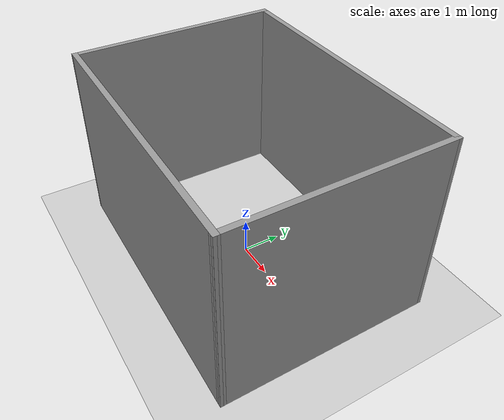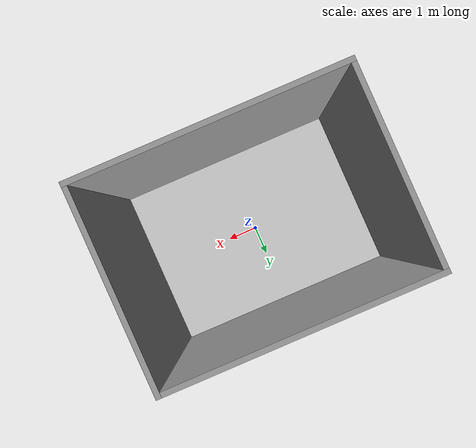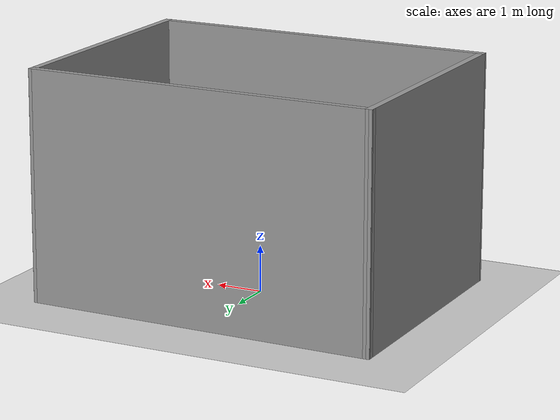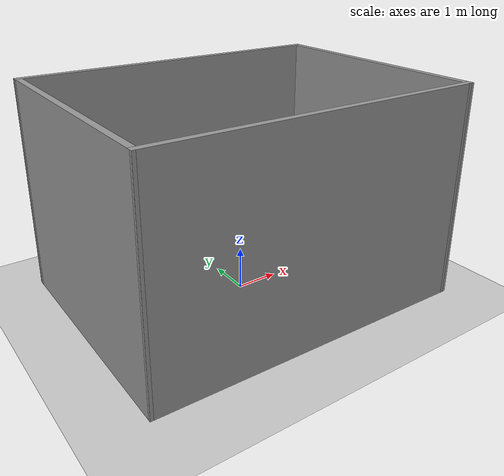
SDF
<?xml version="1.0" ?>
<sdf version="1.4">
 <world name="default">
    <scene>
      <ambient>0.68 0.68 0.68 1.0</ambient>
      <shadows> false</shadows>
      <sky>
        <sunrise/>
        <clouds>
          <speed>12</speed>
      </clouds>
      </sky>
    </scene>

    <physics type='ode'>
      <max_step_size>0.001</max_step_size>
      <real_time_factor>1</real_time_factor>
      <real_time_update_rate>1000</real_time_update_rate>
      <gravity>0 0 -9.8</gravity>
    </physics>

    <include>
      <uri>model://sun</uri>
    </include>

    <include>
      <uri>model://simple_groudplane</uri>
    </include>

    <include>
      <uri>model://simple_room</uri>
      <pose>0 0 0 0 0 0</pose>
    </include>

  </world>
</sdf>

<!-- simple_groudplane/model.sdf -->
<sdf version="1.4">
  <model name="simple_groudplane">
    <static>true</static>
    <link name="link">
      <collision name="collision">
        <geometry>
          <plane>
            <normal>0 0 1</normal>
            <size>30 30</size>
          </plane>
        </geometry>
        <surface>
          <friction>
            <ode>
              <mu>100</mu>
              <mu2>50</mu2>
            </ode>
          </friction>
        </surface>
      </collision>
      <visual name="visual">
        <cast_shadows>false</cast_shadows>
        <geometry>
          <plane>
            <normal>0 0 1</normal>
            <size>30 30</size>
          </plane>
        </geometry>
      </visual>
    </link>
  </model>
</sdf>

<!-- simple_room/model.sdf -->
<sdf version='1.7'>
  <model name='simple_room'>
    <pose>-0.0625 -0.310997 0 0 -0 0</pose>
    <link name='Wall_2'>
      <collision name='Wall_2_Collision'>
        <geometry>
          <box>
            <size>7.73542 0.15 5</size>
          </box>
        </geometry>
        <pose>0 0 2.5 0 -0 0</pose>
      </collision>
      <visual name='Wall_2_Visual'>
        <pose>0 0 2.5 0 -0 0</pose>
        <geometry>
          <box>
            <size>7.73542 0.15 5</size>
          </box>
        </geometry>
        <material>
          <script>
            <uri>file://media/materials/scripts/gazebo.material</uri>
            <name>Gazebo/Grey</name>
          </script>
          <ambient>1 1 1 1</ambient>
        </material>
        <meta>
          <layer>0</layer>
        </meta>
      </visual>
      <pose>0 -2.8 0 0 -0 -0.01292</pose>
    </link>
    <link name='Wall_3'>
      <collision name='Wall_3_Collision'>
        <geometry>
          <box>
            <size>5.75 0.15 5</size>
          </box>
        </geometry>
        <pose>0 0 2.5 0 -0 0</pose>
      </collision>
      <visual name='Wall_3_Visual'>
        <pose>0 0 2.5 0 -0 0</pose>
        <geometry>
          <box>
            <size>5.75 0.15 5</size>
          </box>
        </geometry>
        <material>
          <script>
            <uri>file://media/materials/scripts/gazebo.material</uri>
            <name>Gazebo/Grey</name>
          </script>
          <ambient>1 1 1 1</ambient>
        </material>
        <meta>
          <layer>0</layer>
        </meta>
      </visual>
      <pose>3.7925 -0.049003 0 0 -0 1.5708</pose>
    </link>
    <link name='Wall_4'>
      <collision name='Wall_4_Collision'>
        <geometry>
          <box>
            <size>7.73632 0.15 5</size>
          </box>
        </geometry>
        <pose>0 0 2.5 0 -0 0</pose>
      </collision>
      <visual name='Wall_4_Visual'>
        <pose>0 0 2.5 0 -0 0</pose>
        <geometry>
          <box>
            <size>7.73632 0.15 5</size>
          </box>
        </geometry>
        <material>
          <script>
            <uri>file://media/materials/scripts/gazebo.material</uri>
            <name>Gazebo/Grey</name>
          </script>
          <ambient>1 1 1 1</ambient>
        </material>
        <meta>
          <layer>0</layer>
        </meta>
      </visual>
      <pose>0 2.8 0 0 -0 3.12867</pose>
    </link>
    <link name='Wall_5'>
      <collision name='Wall_5_Collision'>
        <geometry>
          <box>
            <size>5.75 0.15 5</size>
          </box>
        </geometry>
        <pose>0 0 2.5 0 -0 0</pose>
      </collision>
      <visual name='Wall_5_Visual'>
        <pose>0 0 2.5 0 -0 0</pose>
        <geometry>
          <box>
            <size>5.75 0.15 5</size>
          </box>
        </geometry>
        <material>
          <script>
            <uri>file://media/materials/scripts/gazebo.material</uri>
            <name>Gazebo/Grey</name>
          </script>
          <ambient>1 1 1 1</ambient>
        </material>
        <meta>
          <layer>0</layer>
        </meta>
      </visual>
      <pose>-3.7925 0.048997 0 0 -0 -1.5708</pose>
    </link>
    <static>1</static>
  </model>
</sdf>
